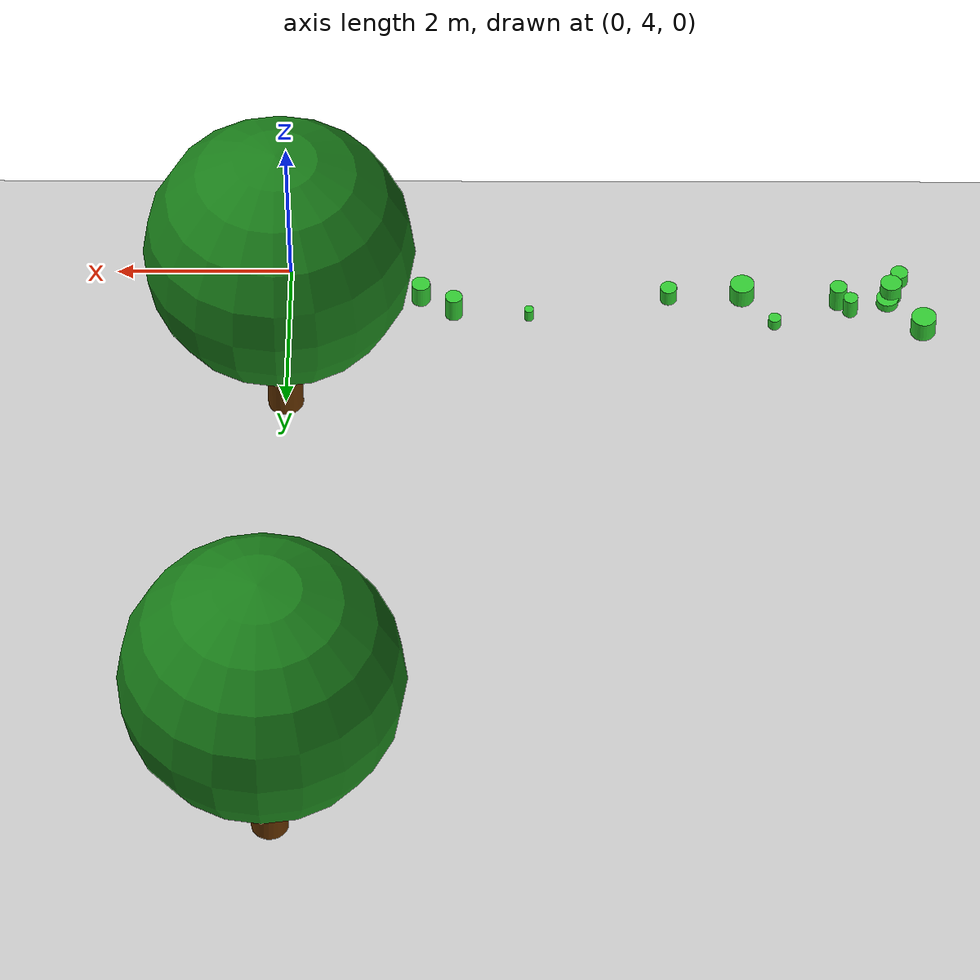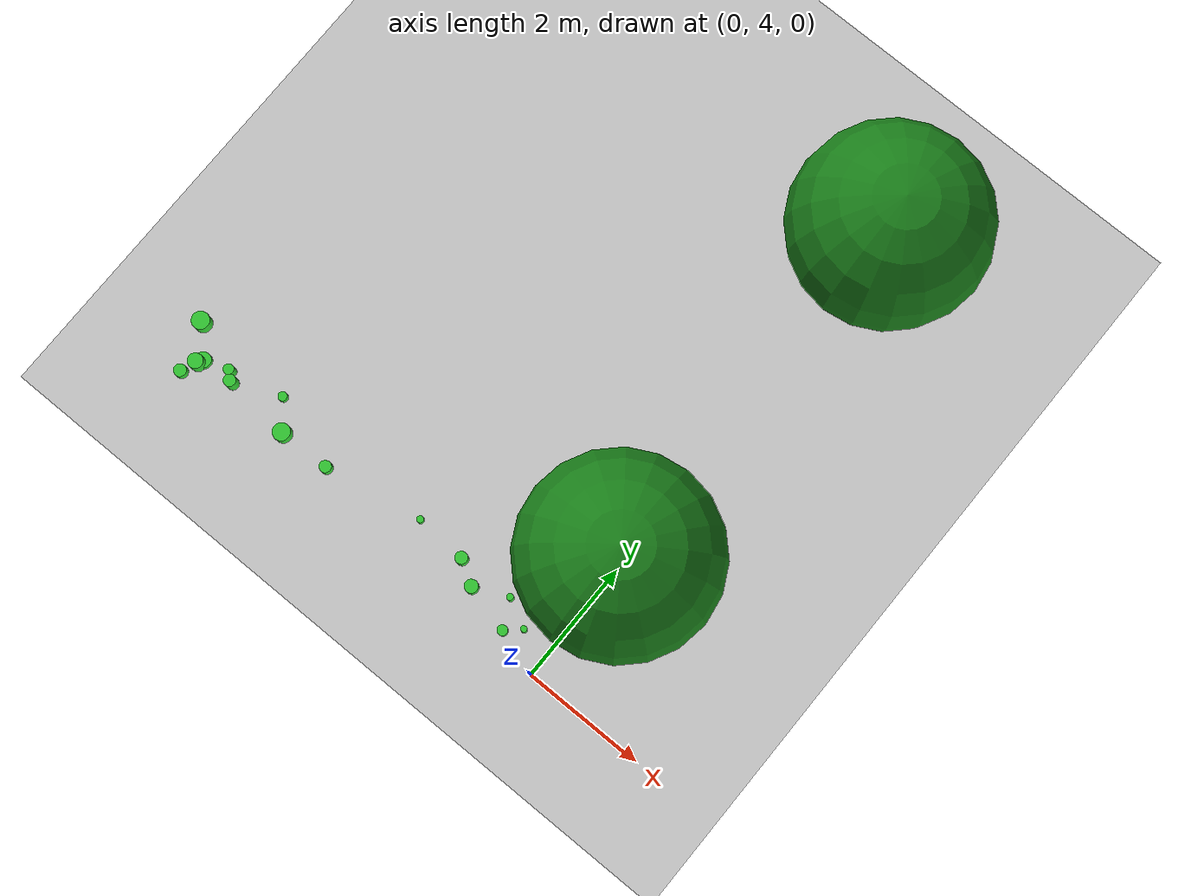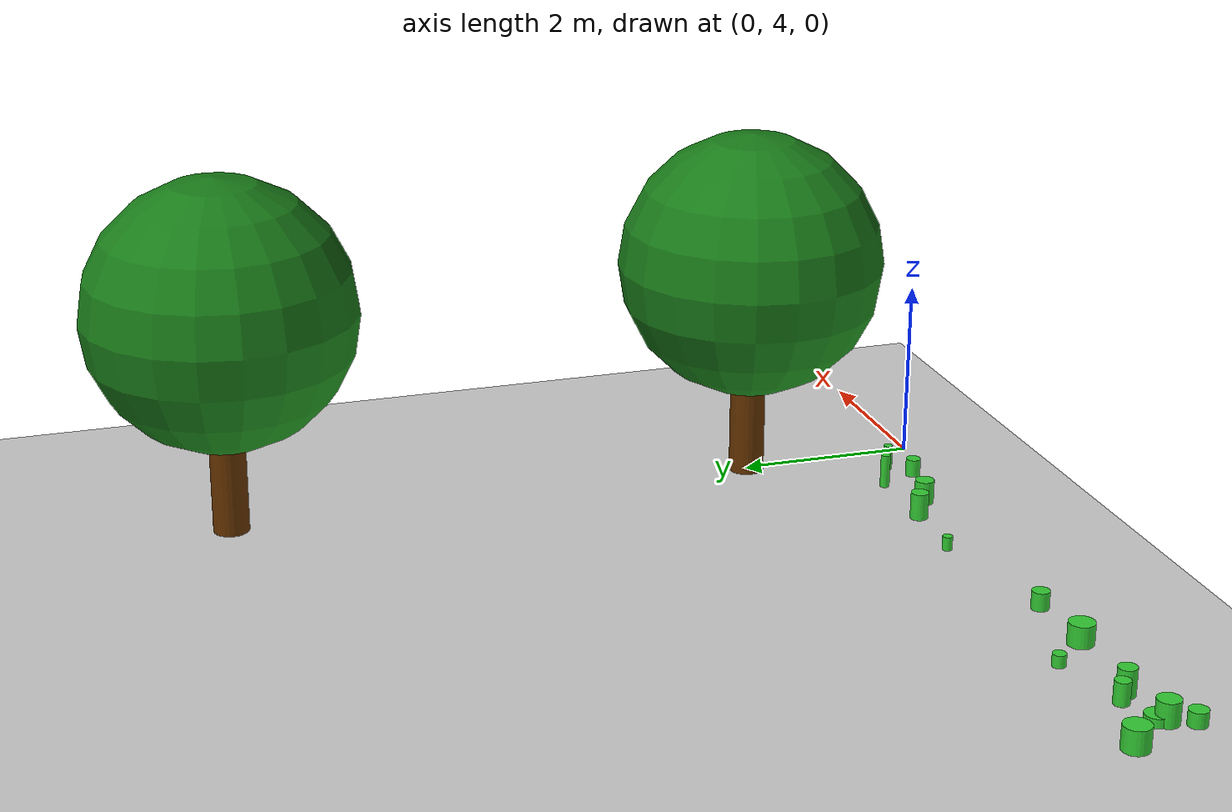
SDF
<sdf version="1.6">
 <world name="street_park_world">
  <include><uri>model://sun</uri></include>
  <include><uri>model://ground_plane</uri></include>
  <model name="tree_16">
   <pose>0 6 0 0 0 0</pose>
   <static>true</static>
   <link name="trunk">
    <pose>0 0 1 0 0 0</pose>
    <collision name="collision">
     <geometry><cylinder><radius>0.2</radius><length>2</length></cylinder></geometry>
    </collision>
    <visual name="visual">
     <geometry><cylinder><radius>0.2</radius><length>2</length></cylinder></geometry>
     <material><ambient>0.4 0.2 0.0 1</ambient></material>
    </visual>
   </link>
   <link name="leaves">
    <pose>0 0 2.5 0 0 0</pose>
    <collision name="collision"><geometry><sphere><radius>1.5</radius></sphere></geometry></collision>
    <visual name="visual">
     <geometry><sphere><radius>1.5</radius></sphere></geometry>
     <material><ambient>0.1 0.5 0.1 1</ambient></material>
    </visual>
   </link>
  </model>
  <model name="tree_18">
   <pose>0 12 0 0 0 0</pose>
   <static>true</static>
   <link name="trunk">
    <pose>0 0 1 0 0 0</pose>
    <collision name="collision">
     <geometry><cylinder><radius>0.2</radius><length>2</length></cylinder></geometry>
    </collision>
    <visual name="visual">
     <geometry><cylinder><radius>0.2</radius><length>2</length></cylinder></geometry>
     <material><ambient>0.4 0.2 0.0 1</ambient></material>
    </visual>
   </link>
   <link name="leaves">
    <pose>0 0 2.5 0 0 0</pose>
    <collision name="collision"><geometry><sphere><radius>1.5</radius></sphere></geometry></collision>
    <visual name="visual">
     <geometry><sphere><radius>1.5</radius></sphere></geometry>
     <material><ambient>0.1 0.5 0.1 1</ambient></material>
    </visual>
   </link>
  </model>
  <model name="weed_2">
   <pose>-7.027036228325663 4.141716107213298 0.0827956962205405 0 0 0</pose>
   <static>true</static>
   <link name="link">
    <collision name="collision">
     <geometry>
      <cylinder><radius>0.10053552881033623</radius><length>0.165591392441081</length></cylinder>
     </geometry>
    </collision>
    <visual name="visual">
     <geometry>
      <cylinder><radius>0.10053552881033623</radius><length>0.165591392441081</length></cylinder>
     </geometry>
     <material><ambient>0.2 0.8 0.2 1</ambient></material>
    </visual>
   </link>
  </model>
  <model name="weed_36">
   <pose>-6.917585381920176 4.396517487618914 0.13089441331691876 0 0 0</pose>
   <static>true</static>
   <link name="link">
    <collision name="collision">
     <geometry>
      <cylinder><radius>0.12299310690899762</radius><length>0.2617888266338375</length></cylinder>
     </geometry>
    </collision>
    <visual name="visual">
     <geometry>
      <cylinder><radius>0.12299310690899762</radius><length>0.2617888266338375</length></cylinder>
     </geometry>
     <material><ambient>0.2 0.8 0.2 1</ambient></material>
    </visual>
   </link>
  </model>
  <model name="weed_38">
   <pose>-5.5709924476946355 4.824606177449827 0.06815062938023986 0 0 0</pose>
   <static>true</static>
   <link name="link">
    <collision name="collision">
     <geometry>
      <cylinder><radius>0.07246973370315574</radius><length>0.13630125876047972</length></cylinder>
     </geometry>
    </collision>
    <visual name="visual">
     <geometry>
      <cylinder><radius>0.07246973370315574</radius><length>0.13630125876047972</length></cylinder>
     </geometry>
     <material><ambient>0.2 0.8 0.2 1</ambient></material>
    </visual>
   </link>
  </model>
  <model name="weed_60">
   <pose>-7.269757619771475 4.917141205007715 0.12841740732979384 0 0 0</pose>
   <static>true</static>
   <link name="link">
    <collision name="collision">
     <geometry>
      <cylinder><radius>0.14347062577364272</radius><length>0.2568348146595877</length></cylinder>
     </geometry>
    </collision>
    <visual name="visual">
     <geometry>
      <cylinder><radius>0.14347062577364272</radius><length>0.2568348146595877</length></cylinder>
     </geometry>
     <material><ambient>0.2 0.8 0.2 1</ambient></material>
    </visual>
   </link>
  </model>
  <model name="weed_72">
   <pose>-6.878180469264628 4.487352313561152 0.050531853363167345 0 0 0</pose>
   <static>true</static>
   <link name="link">
    <collision name="collision">
     <geometry>
      <cylinder><radius>0.12711192230196272</radius><length>0.10106370672633469</length></cylinder>
     </geometry>
    </collision>
    <visual name="visual">
     <geometry>
      <cylinder><radius>0.12711192230196272</radius><length>0.10106370672633469</length></cylinder>
     </geometry>
     <material><ambient>0.2 0.8 0.2 1</ambient></material>
    </visual>
   </link>
  </model>
  <model name="weed_100">
   <pose>-5.205618062567332 4.39918196138474 0.12097792788639895 0 0 0</pose>
   <static>true</static>
   <link name="link">
    <collision name="collision">
     <geometry>
      <cylinder><radius>0.14011808258282543</radius><length>0.2419558557727979</length></cylinder>
     </geometry>
    </collision>
    <visual name="visual">
     <geometry>
      <cylinder><radius>0.14011808258282543</radius><length>0.2419558557727979</length></cylinder>
     </geometry>
     <material><ambient>0.2 0.8 0.2 1</ambient></material>
    </visual>
   </link>
  </model>
  <model name="weed_106">
   <pose>-0.506054789060677 4.441578215409814 0.14840870166676762 0 0 0</pose>
   <static>true</static>
   <link name="link">
    <collision name="collision">
     <geometry>
      <cylinder><radius>0.050554481813803176</radius><length>0.29681740333353523</length></cylinder>
     </geometry>
    </collision>
    <visual name="visual">
     <geometry>
      <cylinder><radius>0.050554481813803176</radius><length>0.29681740333353523</length></cylinder>
     </geometry>
     <material><ambient>0.2 0.8 0.2 1</ambient></material>
    </visual>
   </link>
  </model>
  <model name="weed_140">
   <pose>-6.445978808873001 4.618799226705279 0.1258941184515617 0 0 0</pose>
   <static>true</static>
   <link name="link">
    <collision name="collision">
     <geometry>
      <cylinder><radius>0.08412311748612832</radius><length>0.2517882369031234</length></cylinder>
     </geometry>
    </collision>
    <visual name="visual">
     <geometry>
      <cylinder><radius>0.08412311748612832</radius><length>0.2517882369031234</length></cylinder>
     </geometry>
     <material><ambient>0.2 0.8 0.2 1</ambient></material>
    </visual>
   </link>
  </model>
  <model name="weed_162">
   <pose>-2.754274956254079 4.716656317390414 0.07765455055851227 0 0 0</pose>
   <static>true</static>
   <link name="link">
    <collision name="collision">
     <geometry>
      <cylinder><radius>0.05513767171835779</radius><length>0.15530910111702453</length></cylinder>
     </geometry>
    </collision>
    <visual name="visual">
     <geometry>
      <cylinder><radius>0.05513767171835779</radius><length>0.15530910111702453</length></cylinder>
     </geometry>
     <material><ambient>0.2 0.8 0.2 1</ambient></material>
    </visual>
   </link>
  </model>
  <model name="weed_184">
   <pose>-0.7446778028087948 4.227739368811358 0.10219415844419757 0 0 0</pose>
   <static>true</static>
   <link name="link">
    <collision name="collision">
     <geometry>
      <cylinder><radius>0.0833308393665092</radius><length>0.20438831688839515</length></cylinder>
     </geometry>
    </collision>
    <visual name="visual">
     <geometry>
      <cylinder><radius>0.0833308393665092</radius><length>0.20438831688839515</length></cylinder>
     </geometry>
     <material><ambient>0.2 0.8 0.2 1</ambient></material>
    </visual>
   </link>
  </model>
  <model name="weed_224">
   <pose>-1.5112745046705527 4.432087982698604 0.13578840385261085 0 0 0</pose>
   <static>true</static>
   <link name="link">
    <collision name="collision">
     <geometry>
      <cylinder><radius>0.1074811930178645</radius><length>0.2715768077052217</length></cylinder>
     </geometry>
    </collision>
    <visual name="visual">
     <geometry>
      <cylinder><radius>0.1074811930178645</radius><length>0.2715768077052217</length></cylinder>
     </geometry>
     <material><ambient>0.2 0.8 0.2 1</ambient></material>
    </visual>
   </link>
  </model>
  <model name="weed_248">
   <pose>-0.9587665989346945 4.671362239976781 0.19272822880715895 0 0 0</pose>
   <static>true</static>
   <link name="link">
    <collision name="collision">
     <geometry>
      <cylinder><radius>0.053271628685504696</radius><length>0.3854564576143179</length></cylinder>
     </geometry>
    </collision>
    <visual name="visual">
     <geometry>
      <cylinder><radius>0.053271628685504696</radius><length>0.3854564576143179</length></cylinder>
     </geometry>
     <material><ambient>0.2 0.8 0.2 1</ambient></material>
    </visual>
   </link>
  </model>
  <model name="weed_264">
   <pose>-1.8916280101473006 4.662264156317584 0.15291462440933493 0 0 0</pose>
   <static>true</static>
   <link name="link">
    <collision name="collision">
     <geometry>
      <cylinder><radius>0.09902688541442253</radius><length>0.30582924881866985</length></cylinder>
     </geometry>
    </collision>
    <visual name="visual">
     <geometry>
      <cylinder><radius>0.09902688541442253</radius><length>0.30582924881866985</length></cylinder>
     </geometry>
     <material><ambient>0.2 0.8 0.2 1</ambient></material>
    </visual>
   </link>
  </model>
  <model name="weed_270">
   <pose>-4.360057563124663 4.419891004110418 0.10083974282527629 0 0 0</pose>
   <static>true</static>
   <link name="link">
    <collision name="collision">
     <geometry>
      <cylinder><radius>0.09534989029074473</radius><length>0.20167948565055258</length></cylinder>
     </geometry>
    </collision>
    <visual name="visual">
     <geometry>
      <cylinder><radius>0.09534989029074473</radius><length>0.20167948565055258</length></cylinder>
     </geometry>
     <material><ambient>0.2 0.8 0.2 1</ambient></material>
    </visual>
   </link>
  </model>
  <model name="weed_290">
   <pose>-6.307772994189868 4.496545058112629 0.15177293821401996 0 0 0</pose>
   <static>true</static>
   <link name="link">
    <collision name="collision">
     <geometry>
      <cylinder><radius>0.09866327533642508</radius><length>0.30354587642803993</length></cylinder>
     </geometry>
    </collision>
    <visual name="visual">
     <geometry>
      <cylinder><radius>0.09866327533642508</radius><length>0.30354587642803993</length></cylinder>
     </geometry>
     <material><ambient>0.2 0.8 0.2 1</ambient></material>
    </visual>
   </link>
  </model>
 </world>
</sdf>
